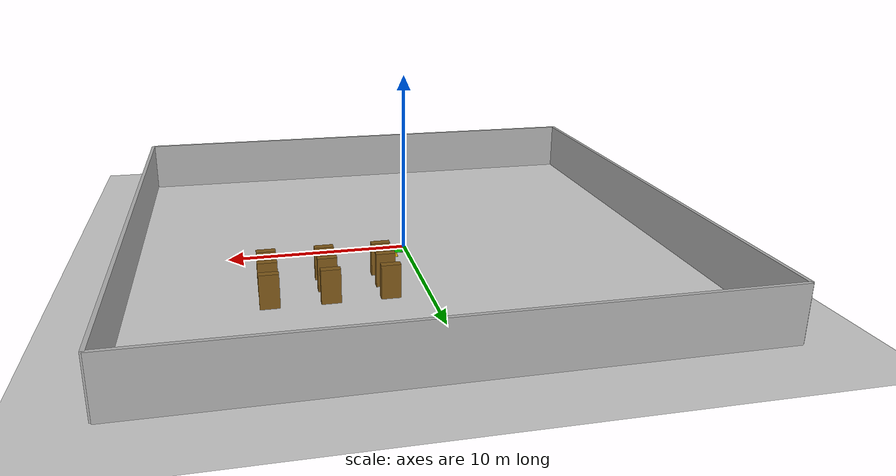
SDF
<?xml version="1.0" ?>
<sdf version="1.9">
  <world name="warehouse">

    <physics name="1ms" type="ignored">
      <max_step_size>0.001</max_step_size>
      <real_time_factor>1.0</real_time_factor>
    </physics>

    <plugin filename="gz-sim-physics-system"
            name="gz::sim::systems::Physics"/>
    <plugin filename="gz-sim-sensors-system"
            name="gz::sim::systems::Sensors">
      <render_engine>ogre2</render_engine>
    </plugin>
    <plugin filename="gz-sim-scene-broadcaster-system"
            name="gz::sim::systems::SceneBroadcaster"/>
    <plugin filename="gz-sim-user-commands-system"
            name="gz::sim::systems::UserCommands"/>
    <plugin filename="gz-sim-imu-system"
            name="gz::sim::systems::Imu"/>

    <!-- Lighting -->
    <light name="sun" type="directional">
      <cast_shadows>true</cast_shadows>
      <pose>0 0 10 0 0 0</pose>
      <diffuse>0.8 0.8 0.8 1</diffuse>
      <specular>0.2 0.2 0.2 1</specular>
      <direction>-0.5 0.1 -0.9</direction>
    </light>

    <!-- Ground plane -->
    <model name="ground_plane">
      <static>true</static>
      <link name="link">
        <collision name="collision">
          <geometry>
            <plane><normal>0 0 1</normal><size>100 100</size></plane>
          </geometry>
        </collision>
        <visual name="visual">
          <geometry>
            <plane><normal>0 0 1</normal><size>100 100</size></plane>
          </geometry>
          <material>
            <ambient>0.8 0.8 0.8 1</ambient>
            <diffuse>0.8 0.8 0.8 1</diffuse>
          </material>
        </visual>
      </link>
    </model>

    <!-- Warehouse outer walls -->
    <!-- North wall -->
    <model name="wall_north">
      <static>true</static>
      <pose>0 15 1.5 0 0 0</pose>
      <link name="link">
        <collision name="collision">
          <geometry><box><size>30 0.2 3</size></box></geometry>
        </collision>
        <visual name="visual">
          <geometry><box><size>30 0.2 3</size></box></geometry>
          <material><ambient>0.7 0.7 0.7 1</ambient></material>
        </visual>
      </link>
    </model>

    <!-- South wall -->
    <model name="wall_south">
      <static>true</static>
      <pose>0 -15 1.5 0 0 0</pose>
      <link name="link">
        <collision name="collision">
          <geometry><box><size>30 0.2 3</size></box></geometry>
        </collision>
        <visual name="visual">
          <geometry><box><size>30 0.2 3</size></box></geometry>
          <material><ambient>0.7 0.7 0.7 1</ambient></material>
        </visual>
      </link>
    </model>

    <!-- East wall -->
    <model name="wall_east">
      <static>true</static>
      <pose>15 0 1.5 0 0 0</pose>
      <link name="link">
        <collision name="collision">
          <geometry><box><size>0.2 30 3</size></box></geometry>
        </collision>
        <visual name="visual">
          <geometry><box><size>0.2 30 3</size></box></geometry>
          <material><ambient>0.7 0.7 0.7 1</ambient></material>
        </visual>
      </link>
    </model>

    <!-- West wall -->
    <model name="wall_west">
      <static>true</static>
      <pose>-15 0 1.5 0 0 0</pose>
      <link name="link">
        <collision name="collision">
          <geometry><box><size>0.2 30 3</size></box></geometry>
        </collision>
        <visual name="visual">
          <geometry><box><size>0.2 30 3</size></box></geometry>
          <material><ambient>0.7 0.7 0.7 1</ambient></material>
        </visual>
      </link>
    </model>

    <!-- ── Row A shelves (x=2.0) ── -->
    <model name="shelf_A1">
      <static>true</static>
      <pose>2.0 3.5 0.9 0 0 0</pose>
      <link name="link">
        <collision name="collision">
          <geometry><box><size>1.0 0.4 1.8</size></box></geometry>
        </collision>
        <visual name="visual">
          <geometry><box><size>1.0 0.4 1.8</size></box></geometry>
          <material><ambient>0.5 0.35 0.1 1</ambient></material>
        </visual>
      </link>
    </model>

    <model name="shelf_A2">
      <static>true</static>
      <pose>2.0 5.0 0.9 0 0 0</pose>
      <link name="link">
        <collision name="collision">
          <geometry><box><size>1.0 0.4 1.8</size></box></geometry>
        </collision>
        <visual name="visual">
          <geometry><box><size>1.0 0.4 1.8</size></box></geometry>
          <material><ambient>0.5 0.35 0.1 1</ambient></material>
        </visual>
      </link>
    </model>

    <model name="shelf_A3">
      <static>true</static>
      <pose>2.0 6.5 0.9 0 0 0</pose>
      <link name="link">
        <collision name="collision">
          <geometry><box><size>1.0 0.4 1.8</size></box></geometry>
        </collision>
        <visual name="visual">
          <geometry><box><size>1.0 0.4 1.8</size></box></geometry>
          <material><ambient>0.5 0.35 0.1 1</ambient></material>
        </visual>
      </link>
    </model>

    <!-- ── Row B shelves (x=5.0) ── -->
    <model name="shelf_B1">
      <static>true</static>
      <pose>5.0 3.5 0.9 0 0 0</pose>
      <link name="link">
        <collision name="collision">
          <geometry><box><size>1.0 0.4 1.8</size></box></geometry>
        </collision>
        <visual name="visual">
          <geometry><box><size>1.0 0.4 1.8</size></box></geometry>
          <material><ambient>0.5 0.35 0.1 1</ambient></material>
        </visual>
      </link>
    </model>

    <model name="shelf_B2">
      <static>true</static>
      <pose>5.0 5.0 0.9 0 0 0</pose>
      <link name="link">
        <collision name="collision">
          <geometry><box><size>1.0 0.4 1.8</size></box></geometry>
        </collision>
        <visual name="visual">
          <geometry><box><size>1.0 0.4 1.8</size></box></geometry>
          <material><ambient>0.5 0.35 0.1 1</ambient></material>
        </visual>
      </link>
    </model>

    <model name="shelf_B3">
      <static>true</static>
      <pose>5.0 6.5 0.9 0 0 0</pose>
      <link name="link">
        <collision name="collision">
          <geometry><box><size>1.0 0.4 1.8</size></box></geometry>
        </collision>
        <visual name="visual">
          <geometry><box><size>1.0 0.4 1.8</size></box></geometry>
          <material><ambient>0.5 0.35 0.1 1</ambient></material>
        </visual>
      </link>
    </model>

    <!-- ── Row C shelves (x=8.0) ── -->
    <model name="shelf_C1">
      <static>true</static>
      <pose>8.0 3.5 0.9 0 0 0</pose>
      <link name="link">
        <collision name="collision">
          <geometry><box><size>1.0 0.4 1.8</size></box></geometry>
        </collision>
        <visual name="visual">
          <geometry><box><size>1.0 0.4 1.8</size></box></geometry>
          <material><ambient>0.5 0.35 0.1 1</ambient></material>
        </visual>
      </link>
    </model>

    <model name="shelf_C2">
      <static>true</static>
      <pose>8.0 5.0 0.9 0 0 0</pose>
      <link name="link">
        <collision name="collision">
          <geometry><box><size>1.0 0.4 1.8</size></box></geometry>
        </collision>
        <visual name="visual">
          <geometry><box><size>1.0 0.4 1.8</size></box></geometry>
          <material><ambient>0.5 0.35 0.1 1</ambient></material>
        </visual>
      </link>
    </model>

    <model name="shelf_C3">
      <static>true</static>
      <pose>8.0 6.5 0.9 0 0 0</pose>
      <link name="link">
        <collision name="collision">
          <geometry><box><size>1.0 0.4 1.8</size></box></geometry>
        </collision>
        <visual name="visual">
          <geometry><box><size>1.0 0.4 1.8</size></box></geometry>
          <material><ambient>0.5 0.35 0.1 1</ambient></material>
        </visual>
      </link>
    </model>

    <!-- Charging dock marker -->
    <model name="dock">
      <static>true</static>
      <pose>0.5 0.5 0.01 0 0 0</pose>
      <link name="link">
        <visual name="visual">
          <geometry><box><size>0.6 0.6 0.02</size></box></geometry>
          <material><ambient>0.0 0.8 0.0 1</ambient></material>
        </visual>
      </link>
    </model>
    <!-- Staging area marker — matches STAGING waypoint (x=1.0, y=1.0) in mission_executor.py -->
    <model name="staging">
      <static>true</static>
      <pose>1.0 1.0 0.01 0 0 0</pose>
      <link name="link">
        <visual name="visual">
          <geometry><box><size>0.8 0.8 0.02</size></box></geometry>
          <material><ambient>0.9 0.7 0.0 1</ambient></material>
        </visual>
      </link>
    </model>
  </world>
</sdf>
